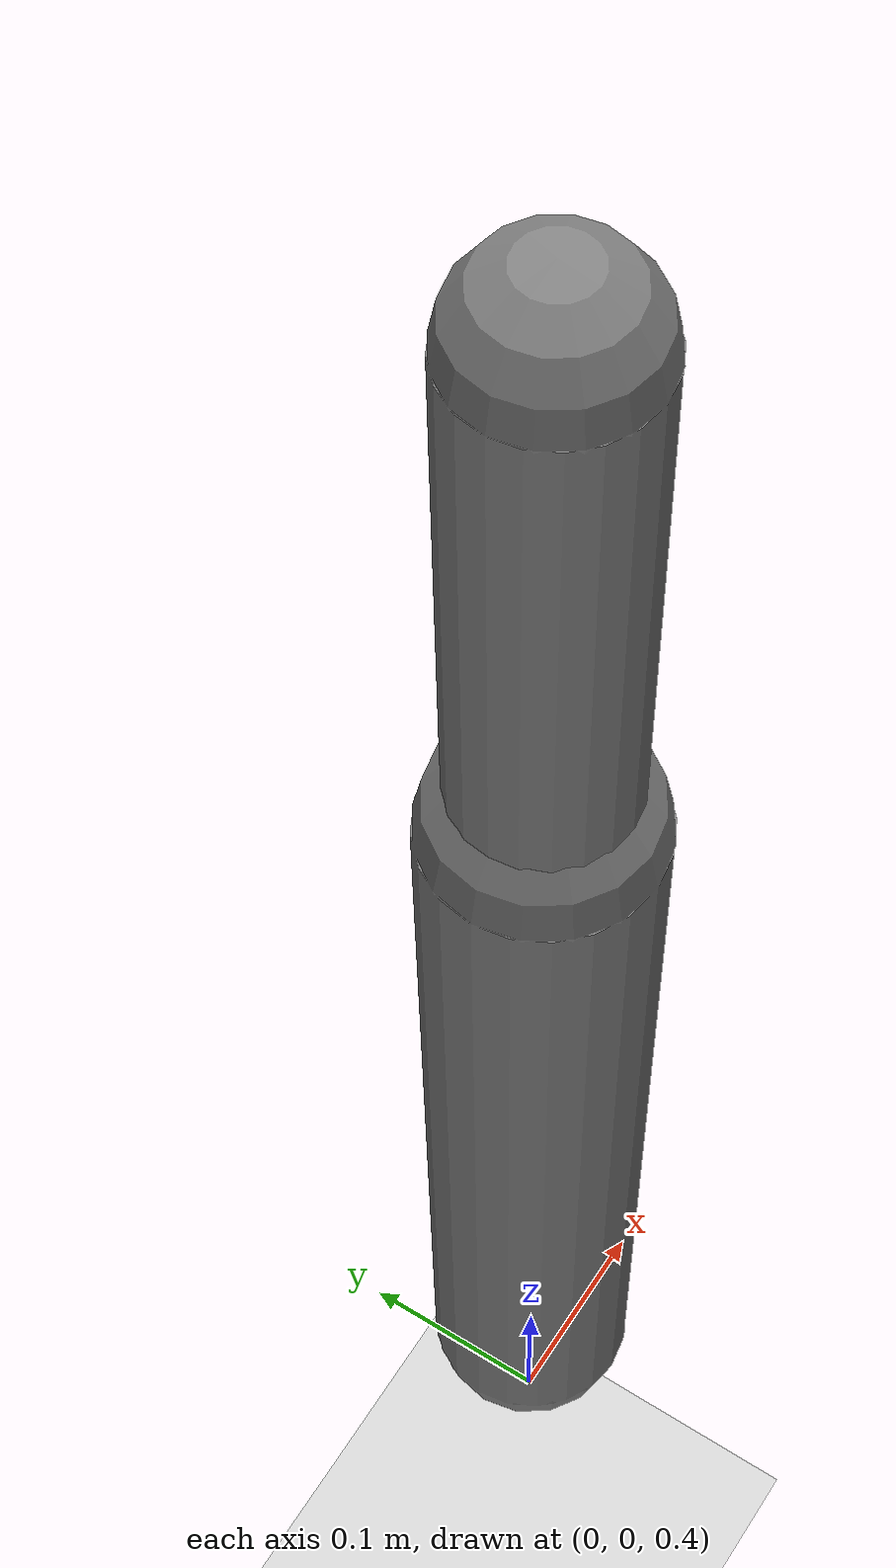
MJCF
<?xml version='1.0' encoding='UTF-8'?>
<mujoco model="RobotModel">
  <option gravity="0 0 -9.81" timestep="0.002" solver="CG" iterations="500" integrator="Euler"/>
  <worldbody>
    <geom name="Floor" type="plane" size="10 10 0.1" pos="0 0 0" rgba="0.8 0.8 0.8 1"/>
    <body name="Limb0" pos="0 0 0.5">
      <geom type="capsule" fromto="0 0 0 0 0 0.5" size="0.05" density="1000" contype="0" conaffinity="0"/>
      <body name="Limb0_70c643f5" pos="0 0 0.5">
        <geom type="capsule" fromto="0 0 0 0 0 0.2674736091653482" size="0.03808342010334235" density="800" contype="0" conaffinity="0"/>
        <joint name="Joint_Limb0_Limb0_70c643f5_0" type="hinge" axis="0 1 0" range="-60 60"/>
      </body>
      <body name="Limb1_70c643f5" pos="0 0 0.5">
        <geom type="capsule" fromto="0 0 0 0 0 0.2836398732690481" size="0.010797135582418231" density="800" contype="0" conaffinity="0"/>
        <joint name="Joint_Limb0_Limb1_70c643f5_0" type="hinge" axis="1 0 0" range="-60 60"/>
      </body>
    </body>
  </worldbody>
  <actuator>
    <position name="position_Actuator_Joint_Limb0_Limb0_70c643f5_0" joint="Joint_Limb0_Limb0_70c643f5_0" gear="1.0"/>
    <position name="position_Actuator_Joint_Limb0_Limb1_70c643f5_0" joint="Joint_Limb0_Limb1_70c643f5_0" gear="1.0"/>
  </actuator>
</mujoco>
